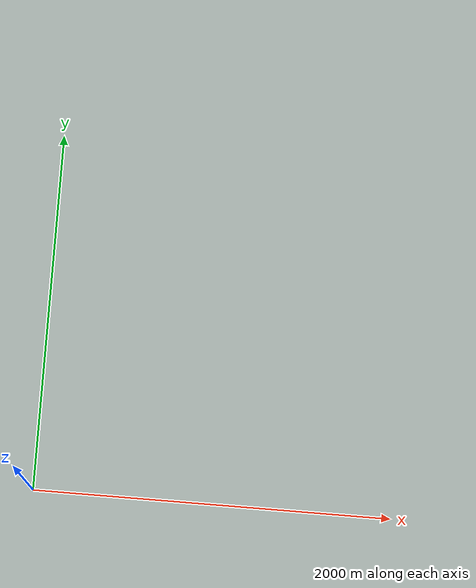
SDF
<?xml version="1.0" ?>
<sdf version="1.9">
  <model name="robotx_light_buoy">
    <static>true</static>

    <link name="base_link">

      <!-- Cuerpo principal: cilindro blanco -->
      <visual name="buoy_body_visual">
        <pose>0 0 0.35 0 0 0</pose>
        <geometry>
          <cylinder>
            <radius>0.2</radius>
            <length>0.7</length>
          </cylinder>
        </geometry>
        <material>
          <ambient>1 1 1 1</ambient>
          <diffuse>1 1 1 1</diffuse>
        </material>
      </visual>

      <collision name="buoy_body_collision">
        <pose>0 0 0.35 0 0 0</pose>
        <geometry>
          <cylinder>
            <radius>0.2</radius>
            <length>0.7</length>
          </cylinder>
        </geometry>
      </collision>

      <!-- Base negra achatada del beacon -->
      <visual name="beacon_base_visual">
        <pose>0 0 0.72 0 0 0</pose>
        <geometry>
          <cylinder>
            <radius>0.09</radius>
            <length>0.04</length>
          </cylinder>
        </geometry>
        <material>
          <ambient>0 0 0 1</ambient>
          <diffuse>0 0 0 1</diffuse>
        </material>
      </visual>

      <!--
        Domo del beacon — estado ON (visible por defecto)
        El plugin la mueve a z=-10000 cuando está OFF.
      -->
      <visual name="beacon_dome_on_visual">
        <pose>0 0 0.80 0 0 0</pose>
        <geometry>
          <sphere>
            <radius>0.07</radius>
          </sphere>
        </geometry>
        <material>
          <ambient>0 0 1 1</ambient>
          <diffuse>0 0 1 1</diffuse>
          <emissive>0 0 1 1</emissive>
          <specular>0.05 0.05 0.1 1</specular>
        </material>
      </visual>

      <!--
        Domo del beacon — estado OFF (apagado, oscuro)
        El plugin lo mueve a la posición real cuando la luz está OFF.
        Empieza a z=-10000 (oculto).
      -->
      <visual name="beacon_dome_off_visual">
        <pose>0 0 -10000 0 0 0</pose>
        <geometry>
          <sphere>
            <radius>0.07</radius>
          </sphere>
        </geometry>
        <material>
          <ambient>0.05 0.05 0.05 1</ambient>
          <diffuse>0.05 0.05 0.05 1</diffuse>
          <emissive>0 0 0 1</emissive>
          <specular>0.01 0.01 0.01 1</specular>
        </material>
      </visual>

      <light name="beacon_light" type="point">
        <pose>0 0 0.85 0 0 0</pose>
        <diffuse>0 0 1 1</diffuse>
        <specular>0 0 0.5 1</specular>
        <intensity>1.5</intensity>
        <attenuation>
          <range>10</range>
          <constant>0.5</constant>
          <linear>0.05</linear>
          <quadratic>0.01</quadratic>
        </attenuation>
        <cast_shadows>false</cast_shadows>
        <visualize>false</visualize>
      </light>

    </link>

  </model>
</sdf>
